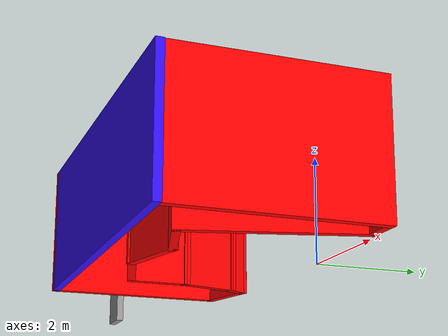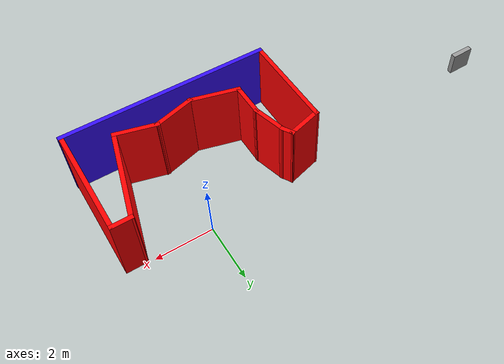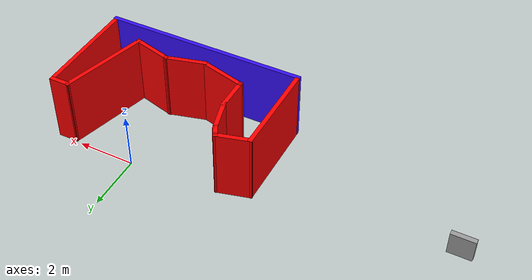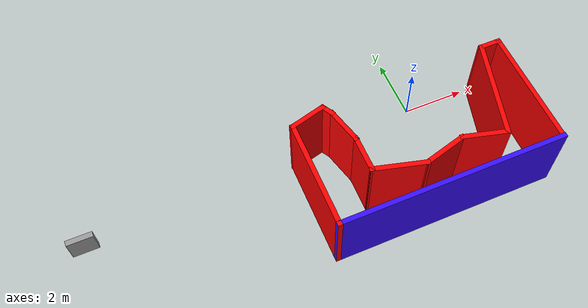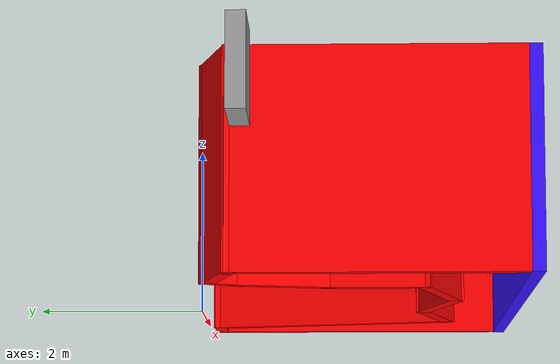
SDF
<?xml version='1.0'?>
<sdf version='1.6'>
  <model name='Building2'>
    <pose frame=''>-0.668428 -1.98691 0 0 -0 0</pose>
    <link name='Wall_0'>
      <collision name='Wall_0_Collision'>
        <geometry>
          <box>
            <size>7.25 0.15 2.5</size>
          </box>
        </geometry>
        <pose frame=''>0 0 1.25 0 -0 0</pose>
      </collision>
      <visual name='Wall_0_Visual'>
        <pose frame=''>0 0 1.25 0 -0 0</pose>
        <geometry>
          <box>
            <size>7.25 0.15 2.5</size>
          </box>
        </geometry>
        <material>
          <script>
            <uri>file://media/materials/scripts/gazebo.material</uri>
            <name>Gazebo/Grey</name>
          </script>
          <ambient>0.211765 0.054902 1 1</ambient>
        </material>
        <meta>
          <layer>0</layer>
        </meta>
      </visual>
      <pose frame=''>0.008428 -1.88309 0 0 -0 3.14159</pose>
    </link>
    <link name='Wall_1'>
      <collision name='Wall_1_Collision'>
        <geometry>
          <box>
            <size>3.5 0.15 2.5</size>
          </box>
        </geometry>
        <pose frame=''>0 0 1.25 0 -0 0</pose>
      </collision>
      <visual name='Wall_1_Visual'>
        <pose frame=''>0 0 1.25 0 -0 0</pose>
        <geometry>
          <box>
            <size>3.5 0.15 2.5</size>
          </box>
        </geometry>
        <material>
          <script>
            <uri>file://media/materials/scripts/gazebo.material</uri>
            <name>Gazebo/Grey</name>
          </script>
          <ambient>1 0 0 1</ambient>
        </material>
        <meta>
          <layer>0</layer>
        </meta>
      </visual>
      <pose frame=''>-3.54157 -0.208094 0 0 -0 1.5708</pose>
    </link>
    <link name='Wall_10'>
      <collision name='Wall_10_Collision'>
        <geometry>
          <box>
            <size>0.75 0.15 2.5</size>
          </box>
        </geometry>
        <pose frame=''>0 0 1.25 0 -0 0</pose>
      </collision>
      <visual name='Wall_10_Visual'>
        <pose frame=''>0 0 1.25 0 -0 0</pose>
        <geometry>
          <box>
            <size>0.75 0.15 2.5</size>
          </box>
        </geometry>
        <material>
          <script>
            <uri>file://media/materials/scripts/gazebo.material</uri>
            <name>Gazebo/Grey</name>
          </script>
          <ambient>1 0 0 1</ambient>
        </material>
        <meta>
          <layer>0</layer>
        </meta>
      </visual>
      <pose frame=''>3.23647 1.86624 0 0 -0 0</pose>
    </link>
    <link name='Wall_11'>
      <collision name='Wall_11_Collision'>
        <geometry>
          <box>
            <size>3.75 0.15 2.5</size>
          </box>
        </geometry>
        <pose frame=''>0 0 1.25 0 -0 0</pose>
      </collision>
      <visual name='Wall_11_Visual'>
        <pose frame=''>0 0 1.25 0 -0 0</pose>
        <geometry>
          <box>
            <size>3.75 0.15 2.5</size>
          </box>
        </geometry>
        <material>
          <script>
            <uri>file://media/materials/scripts/gazebo.material</uri>
            <name>Gazebo/Grey</name>
          </script>
          <ambient>1 0 0 1</ambient>
        </material>
        <meta>
          <layer>0</layer>
        </meta>
      </visual>
      <pose frame=''>3.53647 0.066239 0 0 0 -1.5708</pose>
    </link>
    <link name='Wall_2'>
      <collision name='Wall_2_Collision'>
        <geometry>
          <box>
            <size>1.25 0.15 2.5</size>
          </box>
        </geometry>
        <pose frame=''>0 0 1.25 0 -0 0</pose>
      </collision>
      <visual name='Wall_2_Visual'>
        <pose frame=''>0 0 1.25 0 -0 0</pose>
        <geometry>
          <box>
            <size>1.25 0.15 2.5</size>
          </box>
        </geometry>
        <material>
          <script>
            <uri>file://media/materials/scripts/gazebo.material</uri>
            <name>Gazebo/Grey</name>
          </script>
          <ambient>1 0 0 1</ambient>
        </material>
        <meta>
          <layer>0</layer>
        </meta>
      </visual>
      <pose frame=''>-3.01031 1.60926 0 0 -0 0.261799</pose>
    </link>
    <link name='Wall_3'>
      <collision name='Wall_3_Collision'>
        <geometry>
          <box>
            <size>0.5 0.15 2.5</size>
          </box>
        </geometry>
        <pose frame=''>0 0 1.25 0 -0 0</pose>
      </collision>
      <visual name='Wall_3_Visual'>
        <pose frame=''>0 0 1.25 0 -0 0</pose>
        <geometry>
          <box>
            <size>0.5 0.15 2.5</size>
          </box>
        </geometry>
        <material>
          <script>
            <uri>file://media/materials/scripts/gazebo.material</uri>
            <name>Gazebo/Grey</name>
          </script>
          <ambient>1 0 0 1</ambient>
        </material>
        <meta>
          <layer>0</layer>
        </meta>
      </visual>
      <pose frame=''>-2.39155 1.60005 0 0 0 -1.0472</pose>
    </link>
    <link name='Wall_4'>
      <collision name='Wall_4_Collision'>
        <geometry>
          <box>
            <size>1.25 0.15 2.5</size>
          </box>
        </geometry>
        <pose frame=''>0 0 1.25 0 -0 0</pose>
      </collision>
      <visual name='Wall_4_Visual'>
        <pose frame=''>0 0 1.25 0 -0 0</pose>
        <geometry>
          <box>
            <size>1.25 0.15 2.5</size>
          </box>
        </geometry>
        <material>
          <script>
            <uri>file://media/materials/scripts/gazebo.material</uri>
            <name>Gazebo/Grey</name>
          </script>
          <ambient>1 0 0 1</ambient>
        </material>
        <meta>
          <layer>0</layer>
        </meta>
      </visual>
      <pose frame=''>-2.1617 0.917238 0 0 0 -1.309</pose>
    </link>
    <link name='Wall_5'>
      <collision name='Wall_5_Collision'>
        <geometry>
          <box>
            <size>1.25 0.15 2.5</size>
          </box>
        </geometry>
        <pose frame=''>0 0 1.25 0 -0 0</pose>
      </collision>
      <visual name='Wall_5_Visual'>
        <pose frame=''>0 0 1.25 0 -0 0</pose>
        <geometry>
          <box>
            <size>1.25 0.15 2.5</size>
          </box>
        </geometry>
        <material>
          <script>
            <uri>file://media/materials/scripts/gazebo.material</uri>
            <name>Gazebo/Grey</name>
          </script>
          <ambient>1 0 0 1</ambient>
        </material>
        <meta>
          <layer>0</layer>
        </meta>
      </visual>
      <pose frame=''>-2.01935 -0.164021 0 0 0 -1.5708</pose>
    </link>
    <link name='Wall_6'>
      <collision name='Wall_6_Collision'>
        <geometry>
          <box>
            <size>1.75 0.15 2.5</size>
          </box>
        </geometry>
        <pose frame=''>0 0 1.25 0 -0 0</pose>
      </collision>
      <visual name='Wall_6_Visual'>
        <pose frame=''>0 0 1.25 0 -0 0</pose>
        <geometry>
          <box>
            <size>1.75 0.15 2.5</size>
          </box>
        </geometry>
        <material>
          <script>
            <uri>file://media/materials/scripts/gazebo.material</uri>
            <name>Gazebo/Grey</name>
          </script>
          <ambient>1 0 0 1</ambient>
        </material>
        <meta>
          <layer>0</layer>
        </meta>
      </visual>
      <pose frame=''>-1.24661 -0.921076 0 0 0 -0.261799</pose>
    </link>
    <link name='Wall_7'>
      <collision name='Wall_7_Collision'>
        <geometry>
          <box>
            <size>1.5 0.15 2.5</size>
          </box>
        </geometry>
        <pose frame=''>0 0 1.25 0 -0 0</pose>
      </collision>
      <visual name='Wall_7_Visual'>
        <pose frame=''>0 0 1.25 0 -0 0</pose>
        <geometry>
          <box>
            <size>1.5 0.15 2.5</size>
          </box>
        </geometry>
        <material>
          <script>
            <uri>file://media/materials/scripts/gazebo.material</uri>
            <name>Gazebo/Grey</name>
          </script>
          <ambient>1 0 0 1</ambient>
        </material>
        <meta>
          <layer>0</layer>
        </meta>
      </visual>
      <pose frame=''>0.178129 -0.953429 0 0 -0 0.261799</pose>
    </link>
    <link name='Wall_8'>
      <collision name='Wall_8_Collision'>
        <geometry>
          <box>
            <size>1.5 0.15 2.5</size>
          </box>
        </geometry>
        <pose frame=''>0 0 1.25 0 -0 0</pose>
      </collision>
      <visual name='Wall_8_Visual'>
        <pose frame=''>0 0 1.25 0 -0 0</pose>
        <geometry>
          <box>
            <size>1.5 0.15 2.5</size>
          </box>
        </geometry>
        <material>
          <script>
            <uri>file://media/materials/scripts/gazebo.material</uri>
            <name>Gazebo/Grey</name>
          </script>
          <ambient>1 0 0 1</ambient>
        </material>
        <meta>
          <layer>0</layer>
        </meta>
      </visual>
      <pose frame=''>1.48213 -0.953429 0 0 0 -0.261799</pose>
    </link>
    <link name='Wall_9'>
      <collision name='Wall_9_Collision'>
        <geometry>
          <box>
            <size>3.25 0.15 2.5</size>
          </box>
        </geometry>
        <pose frame=''>0 0 1.25 0 -0 0</pose>
      </collision>
      <visual name='Wall_9_Visual'>
        <pose frame=''>0 0 1.25 0 -0 0</pose>
        <geometry>
          <box>
            <size>3.25 0.15 2.5</size>
          </box>
        </geometry>
        <material>
          <script>
            <uri>file://media/materials/scripts/gazebo.material</uri>
            <name>Gazebo/Grey</name>
          </script>
          <ambient>1 0 0 1</ambient>
        </material>
        <meta>
          <layer>0</layer>
        </meta>
      </visual>
      <pose frame=''>2.5353 0.369054 0 0 -0 1.309</pose>
    </link>
    <link name='Window_0'>
      <collision name='Window_0_Collision'>
        <geometry>
          <box>
            <size>0.8 0.17 0.8</size>
          </box>
        </geometry>
        <pose frame=''>0 0 0.4 0 -0 0</pose>
      </collision>
      <visual name='Window_0_Visual'>
        <pose frame=''>0 0 0.4 0 -0 0</pose>
        <geometry>
          <box>
            <size>0.8 0.17 0.8</size>
          </box>
        </geometry>
        <material>
          <script>
            <uri>file://media/materials/scripts/gazebo.material</uri>
            <name>Gazebo/Grey</name>
          </script>
        </material>
      </visual>
      <pose frame=''>-10.2921 1.07832 0.5 0 -0 0</pose>
    </link>
    <static>1</static>
  </model>
</sdf>
